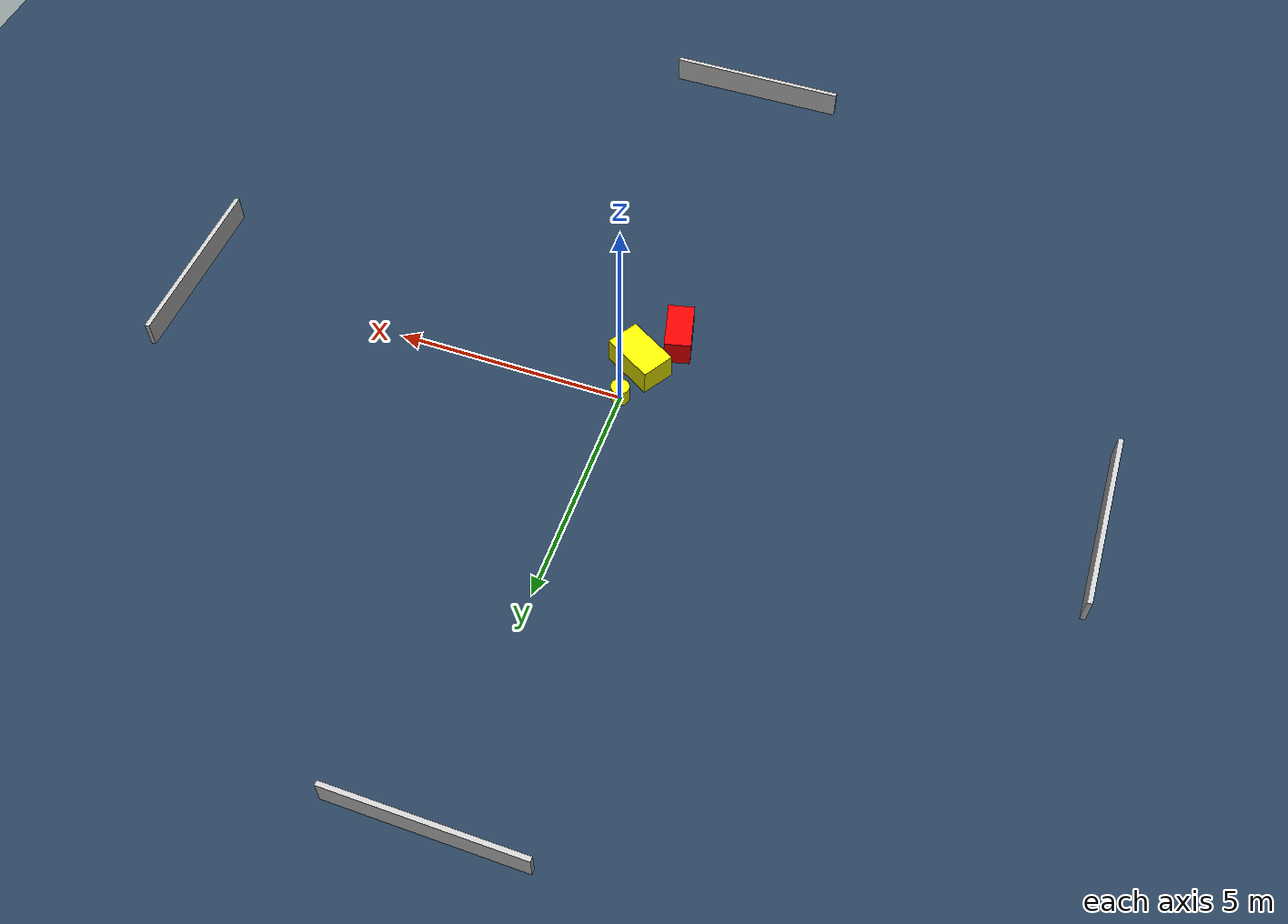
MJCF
<?xml version="1.0" ?>
<mujoco model="generated_environment">
  <option timestep="0.01" integrator="RK4" cone="elliptic"/>
  <default>
    <geom density="1"/>
  </default>
  <asset>
    <texture builtin="gradient" height="3072" name="skybox" rgb1="0.3 0.5 0.7" rgb2="0 0 0" type="skybox" width="512"/>
    <texture builtin="checker" height="300" name="groundplane" rgb1="0.2 0.3 0.4" rgb2="0.1 0.2 0.3" type="2d" width="300"/>
    <material name="groundplane" reflectance="0.2" texrepeat="5 5" texture="groundplane"/>
  </asset>
  <worldbody>
    <light dir="0 0 -1" directional="true" pos="0 0 1.5"/>
    <geom condim="3" friction="0.5 0.005 0.001" material="groundplane" name="floor" pos="0 0 0" size="0 0 0.05" type="plane"/>
    <body name="walls">
      <geom name="wall_1" condim="4" pos="-10.0 0.0 0.3" rgba="0.800000011920929 0.800000011920929 0.800000011920929 1.0" size="0.05 2.0 0.3" type="box"/>
      <geom name="wall_2" condim="4" pos="10.0 0.0 0.3" rgba="0.800000011920929 0.800000011920929 0.800000011920929 1.0" size="0.05 2.0 0.3" type="box"/>
      <geom name="wall_3" condim="4" pos="0.0 -10.0 0.3" rgba="0.800000011920929 0.800000011920929 0.800000011920929 1.0" size="2.0 0.05 0.3" type="box"/>
      <geom name="wall_4" condim="4" pos="0.0 10.0 0.3" rgba="0.800000011920929 0.800000011920929 0.800000011920929 1.0" size="2.0 0.05 0.3" type="box"/>
    </body>
    <body name="robot">
      <joint name="joint_x" type="slide" pos="0 0 0" axis="1 0 0"/>
      <joint name="joint_y" type="slide" pos="0 0 0" axis="0 1 0"/>
      <geom name="robot" type="cylinder" pos="0.0 0.0 0.2" size="0.2 0.2 0.0" mass="5.0" friction="1.0 0.005 0.0001" condim="4" rgba="1.0 1.0 0.0 1.0"/>
    </body>
    <body name="obstacle_1_movable">
      <geom name="obstacle_1_movable" condim="4" pos="-0.11559601816851123 -0.9304271372711193 0.3" euler="0 0 239.04568542376558" friction="0.0 0.005 0.001" rgba="1.0 1.0 0.0 1.0" size="0.3711800264442191 0.592440256080466 0.3" type="box" mass="0.1"/>
      <joint type="free"/>
    </body>
    <body name="obstacle_2_static">
      <geom name="obstacle_2_static" condim="4" pos="-0.6914584050647039 -1.8263017520869747 0.3" euler="0 0 193.66443068302047" friction="0.0 0.005 0.001" rgba="1.0 0.0 0.0 1.0" size="0.28566375717614073 0.5443549505109664 0.3" type="box"/>
    </body>
  </worldbody>
  <actuator>
    <motor name="actuator_x" joint="joint_x" gear="1" ctrlrange="-1 1"/>
    <motor name="actuator_y" joint="joint_y" gear="1" ctrlrange="-1 1"/>
  </actuator>
</mujoco>
